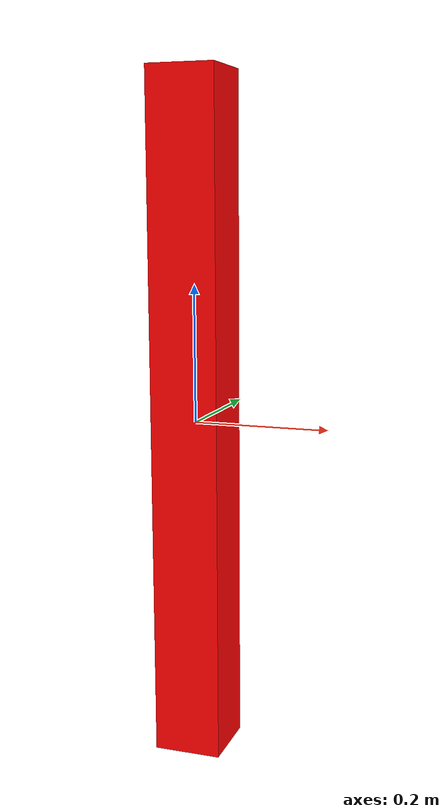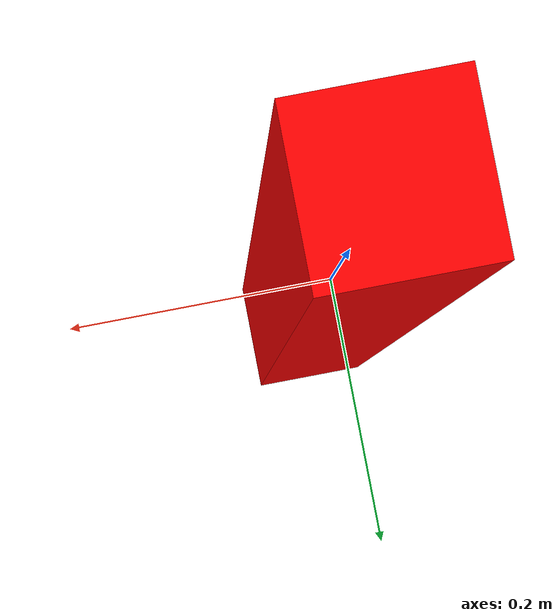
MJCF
<mujoco>
    <compiler angle="degree" coordinate="global"/>
    <option>
        <flag gravity="disable" constraint="disable"/>
    </option>
    <visual>
        <rgba joint="0 1 0 1"/>
    </visual>
    <worldbody>
        <camera name="world_cam_x" mode="fixed" pos="5 0.5 0.5" quat="1 0 0 -1"/>
        <camera name="world_cam_y" mode="fixed" pos="0 -5 0.5"/>
        <camera name="world_cam_z" mode="fixed" pos="0 0 5"/>
      <light cutoff="100" diffuse="1 1 1" dir="0 0 -1.3" directional="true" exponent="1" pos="0 0 1.3" specular=".1 .1 .1"/>
      <body name="pointer" pos="0 1 0">
          <inertial pos="0 0 0" mass="1" diaginertia="0.001 0.001 0.001"/>
          <geom name="pointer_dot" size="0.05 0.05 0.05" rgba="0 0 1 1" pos="0 0 0" type="sphere"/>
          <joint name="pointer:jointx" type="hinge" pos="0 -5 1" axis="1 0 0"/>
          <joint name="pointer:jointz" type="hinge" pos="0 -5 1" axis="0 0 1"/>
      </body>
      <camera name="cam" mode="targetbody" target="pointer" pos="0 -6 1"/>
      <body name="rod" pos="0 0 2.0">
          <geom name="main_body" size="0.05 0.05 0.5" rgba="1 0 0 1" type="box"/>
      </body>
  </worldbody>
    <actuator>
        <position ctrllimited="true" ctrlrange="-0.1 0.1" joint="pointer:jointx" kp="300" name="pointer:jointx" user="1" gear="0.1 0 0 0 0 0"/>
        <position ctrllimited="true" ctrlrange="-0.1 0.1" joint="pointer:jointz" kp="300" name="pointer:jointz" user="1" gear="0.1 0 0 0 0 0"/>
    </actuator>
</mujoco>
